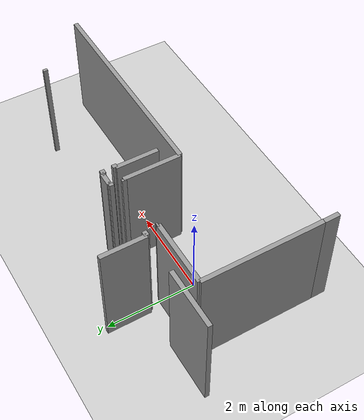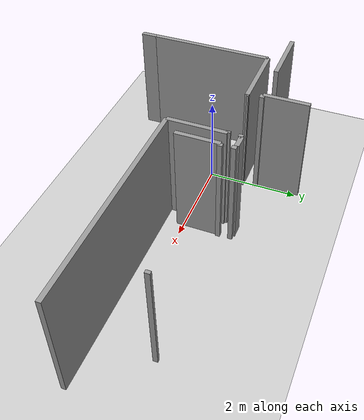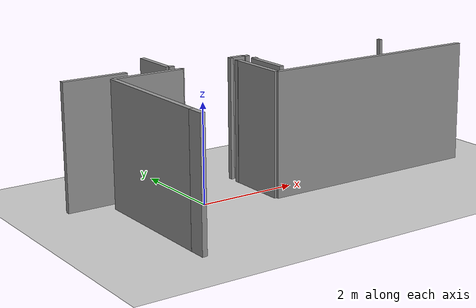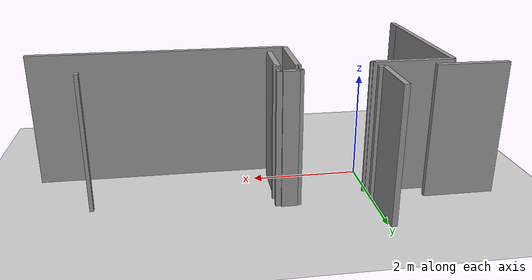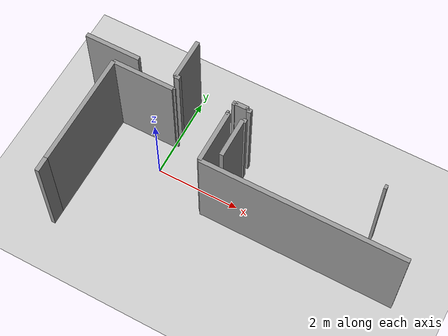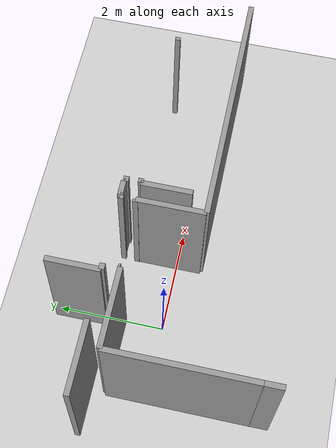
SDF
<sdf version="1.6">
 <world name="default">
  <model name="ground_plane">
   <static>1</static>
   <link name="link">
    <collision name="collision">
     <geometry><plane><normal>0 0 1</normal><size>100 100</size></plane></geometry>
     <surface><friction><ode><mu>100</mu><mu2>50</mu2></ode></friction></surface>
    </collision>
    <visual name="visual">
     <cast_shadows>0</cast_shadows>
     <geometry><plane><normal>0 0 1</normal><size>100 100</size></plane></geometry>
     <material>
      <script><uri>file://media/materials/scripts/gazebo.material</uri><name>Gazebo/Grey</name></script>
     </material>
    </visual>
   </link>
  </model>
  <model name="0510032259_A_40_1_101">
   <static>1</static>
   <link name="Wall_88">
    <collision name="Wall_88_Collision">
     <geometry><box><size>0.101129448235 0.1 2.5</size></box></geometry>
     <pose>0.0505647241173 0 1.25 0 0 0</pose>
    </collision>
    <visual name="Wall_88_Visual">
     <pose>0.0505647241173 0 1.25 0 0 0</pose>
     <geometry><box><size>0.101129448235 0.1 2.5</size></box></geometry>
     <material>
      <script><uri>file://media/materials/scripts/gazebo.material</uri><name>Gazebo/Grey</name></script>
      <ambient>1 1 1 1</ambient>
     </material>
    </visual>
    <pose>31.9115498469 -20.0020327527 0 0 0 3.14159265359</pose>
   </link>
   <link name="Wall_89">
    <collision name="Wall_89_Collision">
     <geometry><box><size>0.0311265261526 0.1 2.5</size></box></geometry>
     <pose>0.0155632630763 0 1.25 0 0 0</pose>
    </collision>
    <visual name="Wall_89_Visual">
     <pose>0.0155632630763 0 1.25 0 0 0</pose>
     <geometry><box><size>0.0311265261526 0.1 2.5</size></box></geometry>
     <material>
      <script><uri>file://media/materials/scripts/gazebo.material</uri><name>Gazebo/Grey</name></script>
      <ambient>1 1 1 1</ambient>
     </material>
    </visual>
    <pose>31.8104203987 -20.0020327527 0 0 0 1.57079632679</pose>
   </link>
   <link name="Wall_90">
    <collision name="Wall_90_Collision">
     <geometry><box><size>0.288904981515 0.1 2.5</size></box></geometry>
     <pose>0.144452490757 0 1.25 0 0 0</pose>
    </collision>
    <visual name="Wall_90_Visual">
     <pose>0.144452490757 0 1.25 0 0 0</pose>
     <geometry><box><size>0.288904981515 0.1 2.5</size></box></geometry>
     <material>
      <script><uri>file://media/materials/scripts/gazebo.material</uri><name>Gazebo/Grey</name></script>
      <ambient>1 1 1 1</ambient>
     </material>
    </visual>
    <pose>31.8104203987 -19.9709062266 0 0 0 3.14159265359</pose>
   </link>
   <link name="Wall_91">
    <collision name="Wall_91_Collision">
     <geometry><box><size>0.0217250447841 0.1 2.5</size></box></geometry>
     <pose>0.010862522392 0 1.25 0 0 0</pose>
    </collision>
    <visual name="Wall_91_Visual">
     <pose>0.010862522392 0 1.25 0 0 0</pose>
     <geometry><box><size>0.0217250447841 0.1 2.5</size></box></geometry>
     <material>
      <script><uri>file://media/materials/scripts/gazebo.material</uri><name>Gazebo/Grey</name></script>
      <ambient>1 1 1 1</ambient>
     </material>
    </visual>
    <pose>31.5215154172 -19.9709062266 0 0 0 -1.57079632679</pose>
   </link>
   <link name="Wall_92">
    <collision name="Wall_92_Collision">
     <geometry><box><size>0.0686054045813 0.1 2.5</size></box></geometry>
     <pose>0.0343027022907 0 1.25 0 0 0</pose>
    </collision>
    <visual name="Wall_92_Visual">
     <pose>0.0343027022907 0 1.25 0 0 0</pose>
     <geometry><box><size>0.0686054045813 0.1 2.5</size></box></geometry>
     <material>
      <script><uri>file://media/materials/scripts/gazebo.material</uri><name>Gazebo/Grey</name></script>
      <ambient>1 1 1 1</ambient>
     </material>
    </visual>
    <pose>31.5215154172 -19.9926312714 0 0 0 3.14159265359</pose>
   </link>
   <link name="Wall_93">
    <collision name="Wall_93_Collision">
     <geometry><box><size>0.116375093697 0.1 2.5</size></box></geometry>
     <pose>0.0581875468486 0 1.25 0 0 0</pose>
    </collision>
    <visual name="Wall_93_Visual">
     <pose>0.0581875468486 0 1.25 0 0 0</pose>
     <geometry><box><size>0.116375093697 0.1 2.5</size></box></geometry>
     <material>
      <script><uri>file://media/materials/scripts/gazebo.material</uri><name>Gazebo/Grey</name></script>
      <ambient>1 1 1 1</ambient>
     </material>
    </visual>
    <pose>30.1763412992 -19.9926312714 0 0 0 3.14159265359</pose>
   </link>
   <link name="Wall_94">
    <collision name="Wall_94_Collision">
     <geometry><box><size>0.995667695748 0.1 2.5</size></box></geometry>
     <pose>0.497833847874 0 1.25 0 0 0</pose>
    </collision>
    <visual name="Wall_94_Visual">
     <pose>0.497833847874 0 1.25 0 0 0</pose>
     <geometry><box><size>0.995667695748 0.1 2.5</size></box></geometry>
     <material>
      <script><uri>file://media/materials/scripts/gazebo.material</uri><name>Gazebo/Grey</name></script>
      <ambient>1 1 1 1</ambient>
     </material>
    </visual>
    <pose>30.0599662055 -19.9926312714 0 0 0 1.57079632679</pose>
   </link>
   <link name="Wall_97">
    <collision name="Wall_97_Collision">
     <geometry><box><size>1.32649820228 0.1 2.5</size></box></geometry>
     <pose>0.663249101142 0 1.25 0 0 0</pose>
    </collision>
    <visual name="Wall_97_Visual">
     <pose>0.663249101142 0 1.25 0 0 0</pose>
     <geometry><box><size>1.32649820228 0.1 2.5</size></box></geometry>
     <material>
      <script><uri>file://media/materials/scripts/gazebo.material</uri><name>Gazebo/Grey</name></script>
      <ambient>1 1 1 1</ambient>
     </material>
    </visual>
    <pose>29.1558994296 -19.9800536139 0 0 0 3.14159265359</pose>
   </link>
   <link name="Wall_291">
    <collision name="Wall_291_Collision">
     <geometry><box><size>0.948279147768 0.1 2.5</size></box></geometry>
     <pose>0.474139573884 0 1.25 0 0 0</pose>
    </collision>
    <visual name="Wall_291_Visual">
     <pose>0.474139573884 0 1.25 0 0 0</pose>
     <geometry><box><size>0.948279147768 0.1 2.5</size></box></geometry>
     <material>
      <script><uri>file://media/materials/scripts/gazebo.material</uri><name>Gazebo/Grey</name></script>
      <ambient>1 1 1 1</ambient>
     </material>
    </visual>
    <pose>31.8409116896 -21.2192704959 0 0 0 1.57079632679</pose>
   </link>
   <link name="Wall_292">
    <collision name="Wall_292_Collision">
     <geometry><box><size>0.0866460850453 0.1 2.5</size></box></geometry>
     <pose>0.0433230425227 0 1.25 0 0 0</pose>
    </collision>
    <visual name="Wall_292_Visual">
     <pose>0.0433230425227 0 1.25 0 0 0</pose>
     <geometry><box><size>0.0866460850453 0.1 2.5</size></box></geometry>
     <material>
      <script><uri>file://media/materials/scripts/gazebo.material</uri><name>Gazebo/Grey</name></script>
      <ambient>1 1 1 1</ambient>
     </material>
    </visual>
    <pose>31.8409116896 -20.2709913481 0 0 0 0.0</pose>
   </link>
   <link name="Wall_293">
    <collision name="Wall_293_Collision">
     <geometry><box><size>0.0669537929896 0.1 2.5</size></box></geometry>
     <pose>0.0334768964948 0 1.25 0 0 0</pose>
    </collision>
    <visual name="Wall_293_Visual">
     <pose>0.0334768964948 0 1.25 0 0 0</pose>
     <geometry><box><size>0.0669537929896 0.1 2.5</size></box></geometry>
     <material>
      <script><uri>file://media/materials/scripts/gazebo.material</uri><name>Gazebo/Grey</name></script>
      <ambient>1 1 1 1</ambient>
     </material>
    </visual>
    <pose>35.0886153143 -20.2709913481 0 0 0 0.0</pose>
   </link>
   <link name="Wall_298">
    <collision name="Wall_298_Collision">
     <geometry><box><size>2.69136461232 0.1 2.5</size></box></geometry>
     <pose>1.34568230616 0 1.25 0 0 0</pose>
    </collision>
    <visual name="Wall_298_Visual">
     <pose>1.34568230616 0 1.25 0 0 0</pose>
     <geometry><box><size>2.69136461232 0.1 2.5</size></box></geometry>
     <material>
      <script><uri>file://media/materials/scripts/gazebo.material</uri><name>Gazebo/Grey</name></script>
      <ambient>1 1 1 1</ambient>
     </material>
    </visual>
    <pose>28.7033578534 -22.9900522163 0 0 0 1.57079632679</pose>
   </link>
   <link name="Wall_299">
    <collision name="Wall_299_Collision">
     <geometry><box><size>1.47425391623 0.1 2.5</size></box></geometry>
     <pose>0.737126958113 0 1.25 0 0 0</pose>
    </collision>
    <visual name="Wall_299_Visual">
     <pose>0.737126958113 0 1.25 0 0 0</pose>
     <geometry><box><size>1.47425391623 0.1 2.5</size></box></geometry>
     <material>
      <script><uri>file://media/materials/scripts/gazebo.material</uri><name>Gazebo/Grey</name></script>
      <ambient>1 1 1 1</ambient>
     </material>
    </visual>
    <pose>28.7033578534 -20.298687604 0 0 0 0.0</pose>
   </link>
   <link name="Wall_300">
    <collision name="Wall_300_Collision">
     <geometry><box><size>0.0384952547928 0.1 2.5</size></box></geometry>
     <pose>0.0192476273964 0 1.25 0 0 0</pose>
    </collision>
    <visual name="Wall_300_Visual">
     <pose>0.0192476273964 0 1.25 0 0 0</pose>
     <geometry><box><size>0.0384952547928 0.1 2.5</size></box></geometry>
     <material>
      <script><uri>file://media/materials/scripts/gazebo.material</uri><name>Gazebo/Grey</name></script>
      <ambient>1 1 1 1</ambient>
     </material>
    </visual>
    <pose>30.1776117696 -20.298687604 0 0 0 1.57079632679</pose>
   </link>
   <link name="Wall_301">
    <collision name="Wall_301_Collision">
     <geometry><box><size>0.0565359352568 0.1 2.5</size></box></geometry>
     <pose>0.0282679676284 0 1.25 0 0 0</pose>
    </collision>
    <visual name="Wall_301_Visual">
     <pose>0.0282679676284 0 1.25 0 0 0</pose>
     <geometry><box><size>0.0565359352568 0.1 2.5</size></box></geometry>
     <material>
      <script><uri>file://media/materials/scripts/gazebo.material</uri><name>Gazebo/Grey</name></script>
      <ambient>1 1 1 1</ambient>
     </material>
    </visual>
    <pose>31.4408405433 -20.2601923492 0 0 0 0.0</pose>
   </link>
   <link name="Wall_302">
    <collision name="Wall_302_Collision">
     <geometry><box><size>1.27085159635 0.1 2.5</size></box></geometry>
     <pose>0.635425798173 0 1.25 0 0 0</pose>
    </collision>
    <visual name="Wall_302_Visual">
     <pose>0.635425798173 0 1.25 0 0 0</pose>
     <geometry><box><size>1.27085159635 0.1 2.5</size></box></geometry>
     <material>
      <script><uri>file://media/materials/scripts/gazebo.material</uri><name>Gazebo/Grey</name></script>
      <ambient>1 1 1 1</ambient>
     </material>
    </visual>
    <pose>31.4973764785 -20.2601923492 0 0 0 -1.57079632679</pose>
   </link>
   <link name="Wall_303">
    <collision name="Wall_303_Collision">
     <geometry><box><size>4.71192082428 0.1 2.5</size></box></geometry>
     <pose>2.35596041214 0 1.25 0 0 0</pose>
    </collision>
    <visual name="Wall_303_Visual">
     <pose>2.35596041214 0 1.25 0 0 0</pose>
     <geometry><box><size>4.71192082428 0.1 2.5</size></box></geometry>
     <material>
      <script><uri>file://media/materials/scripts/gazebo.material</uri><name>Gazebo/Grey</name></script>
      <ambient>1 1 1 1</ambient>
     </material>
    </visual>
    <pose>31.4973764785 -21.5310439456 0 0 0 0.0</pose>
   </link>
   <link name="Wall_314">
    <collision name="Wall_314_Collision">
     <geometry><box><size>0.343042926946 0.1 2.5</size></box></geometry>
     <pose>0.171521463473 0 1.25 0 0 0</pose>
    </collision>
    <visual name="Wall_314_Visual">
     <pose>0.171521463473 0 1.25 0 0 0</pose>
     <geometry><box><size>0.343042926946 0.1 2.5</size></box></geometry>
     <material>
      <script><uri>file://media/materials/scripts/gazebo.material</uri><name>Gazebo/Grey</name></script>
      <ambient>1 1 1 1</ambient>
     </material>
    </visual>
    <pose>28.7066610766 -23.3330792392 0 0 0 1.58042565879</pose>
   </link>
   <pose>-30.15 21.0617302537 0 0 0 0</pose>
  </model>
 </world>
</sdf>
